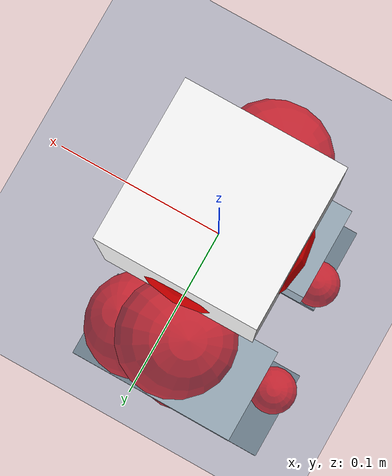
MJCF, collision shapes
<mujoco model="pi_12dof_release_v1">
  <compiler angle="radian" assetdir="assets" balanceinertia="true" inertiafromgeom="false"/>

  <option timestep="0.005" density="1.2" viscosity="2e-05"/>

  <size nkey="1"/>

  <visual>
    <quality shadowsize="8192"/>
    <map shadowclip="0.5"/>
  </visual>

  <default>
    <default class="/">
      <joint armature="0.01" damping="0.01" frictionloss="0.01"/>
      <geom contype="0" conaffinity="0" group="1" solref="-1000 -80"/>
      <site size="0.01 0.005 0.005" group="5"/>
      <general forcelimited="true" biastype="affine" gainprm="20" biasprm="0 -20 -0.5"/>
      <default class="foot">
        <geom size="0.0845 0.036 0.005" type="box" condim="6" group="4" priority="1" friction="0.9 0.2 0.2" solimp="0.015 1 0.005"/>
      </default>
      <default class="reward_collision_sphere">
        <geom group="5" rgba="1 0 0 1"/>
      </default>
    </default>
  </default>

  <asset>
    <texture type="skybox" colorspace="auto" name="//unnamed_texture_0" builtin="gradient" rgb1="0.95 0.95 0.95" rgb2="0.95 0.95 0.95" width="100" height="600"/>
    <texture type="2d" colorspace="auto" name="texplane" builtin="checker" rgb1="0.345 0.575 0.748" rgb2="0.345 0.575 0.748" markrgb="1 1 1" width="512" height="512"/>
    <material name="MatPlane" class="/" texture="texplane" texuniform="true" texrepeat="2 2" specular="0.9"/>
    <mesh name="baselink_1" class="/" file="baselink_1.STL"/>
    <mesh name="r_hip_pitch_link" class="/" file="r_hip_pitch_link.STL"/>
    <mesh name="r_hip_roll_link" class="/" file="r_hip_roll_link.STL"/>
    <mesh name="r_thigh_link" class="/" file="r_thigh_link.STL"/>
    <mesh name="r_calf_link" class="/" file="r_calf_link.STL"/>
    <mesh name="r_ankle_pitch_link" class="/" file="r_ankle_pitch_link.STL"/>
    <mesh name="r_ankle_roll_link" class="/" file="r_ankle_roll_link.STL"/>
    <mesh name="l_hip_pitch_link" class="/" file="l_hip_pitch_link.STL"/>
    <mesh name="l_hip_roll_link" class="/" file="l_hip_roll_link.STL"/>
    <mesh name="l_thigh_link" class="/" file="l_thigh_link.STL"/>
    <mesh name="l_calf_link" class="/" file="l_calf_link.STL"/>
    <mesh name="l_ankle_pitch_link" class="/" file="l_ankle_pitch_link.STL"/>
    <mesh name="l_ankle_roll_link" class="/" file="l_ankle_roll_link.STL"/>
  </asset>

  <worldbody>
    <geom name="floor" class="/" size="100 100 0.125" type="plane" group="0" material="MatPlane"/>
    <light name="toplight_shadow" class="/" pos="0 0 5" dir="0.0990148 0.0990148 -0.990148" type="directional" ambient="0.04 0.04 0.04" diffuse="0.55 0.55 0.55" specular="0.12 0.12 0.12"/>
    <light name="toplight_fill" class="/" pos="0 0 5" dir="0.0990148 0.0990148 -0.990148" type="directional" castshadow="false" ambient="0.04 0.04 0.04" diffuse="0.3 0.3 0.3" specular="0.08 0.08 0.08"/>
    <body name="trunk" pos="-0.000869862 0.000318877 -0.00271189" quat="1 0.000308873 -8.53815e-05 -0.000398881">
      <inertial pos="-0.000584522 -0.00318331 0.0414418" quat="0.696945 0.00800284 0.0108203 0.716998" mass="1.58598" diaginertia="0.00851321 0.00219288 0.00412686"/>
      <joint name="//unnamed_joint_0" type="free"/>
      <geom name="//unnamed_geom_1" class="/" type="mesh" density="0" rgba="1 1 1 1" mesh="baselink_1"/>
      <geom name="//unnamed_geom_2" class="/" size="0.0450081 0.0450081 0.0450081" pos="0 0 0.0791548" type="box" rgba="1 1 1 1"/>
      <geom name="//unnamed_geom_3" class="reward_collision_sphere" size="0.0495089" pos="0 0 0.0692605"/>
      <site name="imu" class="/" pos="-0.0103471 0.00533781 0.0134658" size="0.00900162"/>
      <camera name="track" class="/" pos="0 -1.49723 0" quat="0.707107 0.707107 0 0" mode="trackcom"/>
      <camera name="ego_camera" class="/" pos="0.0721826 0 0.178098" quat="-0.5 -0.5 0.5 0.5"/>
      <body name="r_hip_pitch_link" pos="-0.00119307 -0.0167608 -0.0323684" quat="0.992067 0.000249767 -0.125713 0.000238105">
        <inertial pos="0.00360153 -0.0443756 0.000380763" quat="-0.0234593 0.707425 -0.039045 0.705319" mass="0.261266" diaginertia="8.68885e-05 2.29059e-05 7.92181e-05"/>
        <joint name="r_hip_pitch_joint" class="/" pos="0 0 0" axis="0.00327043 -0.999961 0.00820443" stiffness="0.00781151" range="-1.74413 1.20028" armature="0.00834663" damping="0.00244503" frictionloss="0.00871411"/>
        <geom name="//unnamed_geom_4" class="/" type="mesh" density="0" rgba="0.75294 0.75294 0.75294 1" mesh="r_hip_pitch_link"/>
        <geom name="//unnamed_geom_5" class="/" size="0.000450081 0.000450081 0.000450081" type="box" rgba="0.75294 0.75294 0.75294 1"/>
        <body name="r_hip_roll_link" pos="-0.00217712 -0.0400028 -0.000961466" quat="1 9.53602e-05 -0.000245082 -0.000177166">
          <inertial pos="0.000518652 -0.000455251 -0.0579091" quat="0.706102 -0.0791369 -0.0826721 0.6988" mass="0.290033" diaginertia="0.000265247 6.50401e-05 0.000122372"/>
          <joint name="r_hip_roll_joint" class="/" pos="0 0 0" axis="-0.999955 -0.00645405 -0.00692127" range="-0.173293 0.510872" armature="0.00834901" damping="0.0117395" frictionloss="0.0102552"/>
          <geom name="//unnamed_geom_6" class="/" type="mesh" density="0" rgba="0.75294 0.75294 0.75294 1" mesh="r_hip_roll_link"/>
          <geom name="//unnamed_geom_7" class="/" size="0.000450081 0.000450081 0.000450081" type="box" rgba="0.75294 0.75294 0.75294 1"/>
          <geom name="//unnamed_geom_8" class="reward_collision_sphere" size="0.0360065"/>
          <body name="r_thigh_link" pos="0.00280252 -0.00233851 -0.0706238" quat="0.999999 -9.19735e-05 -0.000993395 -0.000800229">
            <inertial pos="0.000811531 0.00102509 -0.0467396" quat="0.737513 0.675332 -0.000148681 0.00119648" mass="0.0800928" diaginertia="0.00010039 2.21379e-05 5.38833e-05"/>
            <joint name="r_thigh_joint" class="/" pos="0 0 0" axis="-0.000935534 -0.0155006 -0.999879" stiffness="0.0058864" range="-0.287217 0.602322" armature="0.00906465" damping="0.0023563" frictionloss="0.00855004"/>
            <geom name="//unnamed_geom_9" class="/" type="mesh" density="0" rgba="0.75294 0.75294 0.75294 1" mesh="r_thigh_link"/>
            <geom name="//unnamed_geom_10" class="/" size="0.000450081 0.000450081 0.000450081" type="box" rgba="0.75294 0.75294 0.75294 1"/>
            <body name="r_calf_link" pos="-0.00257816 -0.00131648 -0.0690966" quat="0.947699 -5.58408e-05 0.319167 5.33684e-05">
              <inertial pos="0.00234801 -0.000621947 -0.0694407" quat="0.99999 -0.00387885 -0.000651995 0.00225503" mass="0.614518" diaginertia="0.00294323 0.000872332 0.000170436"/>
              <joint name="r_calf_joint" class="/" pos="0 0 0" axis="0.00153202 -0.999956 0.00930745" stiffness="0.000887602" range="-1.63381 0.691393" armature="0.00782113" damping="0.0207001" frictionloss="0.00817883"/>
              <geom name="//unnamed_geom_11" class="/" type="mesh" density="0" rgba="0.75294 0.75294 0.75294 1" mesh="r_calf_link"/>
              <geom name="//unnamed_geom_12" class="/" size="0.000450081 0.000450081 0.000450081" type="box" rgba="0.75294 0.75294 0.75294 1"/>
              <geom name="//unnamed_geom_13" class="reward_collision_sphere" size="0.0360065"/>
              <body name="r_ankle_pitch_link" pos="-0.000607509 0.00210933 -0.140462" quat="0.980091 -0.00017137 -0.198547 9.84034e-05">
                <inertial pos="0.00453359 0.00164177 0.000677005" quat="0.0143621 0.710511 -0.00624789 0.703511" mass="0.120035" diaginertia="0.00024235 5.19097e-05 0.000111884"/>
                <joint name="r_ankle_pitch_joint" class="/" pos="0 0 0" axis="-0.000458499 -0.999999 0.00129988" range="-1.29046 0.48415" armature="0.00935779" damping="0" frictionloss="0.00906584"/>
                <geom name="//unnamed_geom_14" class="/" type="mesh" density="0" rgba="0.75294 0.75294 0.75294 1" mesh="r_ankle_pitch_link"/>
                <geom name="//unnamed_geom_15" class="/" size="0.0351063 0.0360065 0.022504" type="box" rgba="0.75294 0.75294 0.75294 1"/>
                <body name="r_ankle_roll_link" pos="0.0766612 0.000389403 0.00110442" quat="1 0.000241207 -9.32711e-05 -0.00016694">
                  <inertial pos="-0.0233126 -0.000151871 -0.0118099" quat="0.565133 0.428982 0.439804 0.55061" mass="0.38451" diaginertia="0.000911998 0.000234717 0.000268243"/>
                  <joint name="r_ankle_roll_joint" class="/" pos="0 0 0" axis="-0.999995 -0.00313208 -0.000937511" range="-0.204986 0.175316" armature="0.0093079" damping="0" frictionloss="0.0102389"/>
                  <geom name="//unnamed_geom_16" class="/" type="mesh" density="0" rgba="0.75294 0.75294 0.75294 1" mesh="r_ankle_roll_link"/>
                  <geom name="//unnamed_geom_17" class="/" type="mesh" rgba="0.75294 0.75294 0.75294 1" mesh="r_ankle_roll_link"/>
                  <geom name="right_foot" class="foot" size="0.0745424 0.0335643 0.00446978" pos="-0.0490842 0 -0.0435352"/>
                  <geom name="//unnamed_geom_19" class="reward_collision_sphere" size="0.0360065" pos="-0.0481218 0 -0.0197887"/>
                  <geom name="//unnamed_geom_20" class="reward_collision_sphere" size="0.0180032" pos="0.0144365 0.0149723 -0.0395774"/>
                  <geom name="//unnamed_geom_21" class="reward_collision_sphere" size="0.0180032" pos="-0.115492 0.0149723 -0.0395774"/>
                  <site name="right_foot" class="foot" pos="-0.0490842 0 -0.0435352" size="0.00900162"/>
                </body>
              </body>
            </body>
          </body>
        </body>
      </body>
      <body name="l_hip_pitch_link" pos="-0.00242752 0.0187491 -0.0330512" quat="0.9922 -4.29437e-05 -0.124655 -3.72355e-05">
        <inertial pos="0.00264895 0.0428038 -0.000162091" quat="-0.0369764 0.71375 0.0329065 0.698649" mass="0.284002" diaginertia="0.000101506 2.45274e-05 8.90987e-05"/>
        <joint name="l_hip_pitch_joint" class="/" pos="0 0 0" axis="-0.00506856 0.99991 -0.0124115" range="-1.30089 1.73309" armature="0.0100679" damping="0.004137" frictionloss="0.00940902"/>
        <geom name="//unnamed_geom_22" class="/" type="mesh" density="0" rgba="0.75294 0.75294 0.75294 1" mesh="l_hip_pitch_link"/>
        <geom name="//unnamed_geom_23" class="/" size="0.000450081 0.000450081 0.000450081" type="box" rgba="0.75294 0.75294 0.75294 1"/>
        <body name="l_hip_roll_link" pos="-0.00248167 0.0404528 -0.000173528" quat="1 -9.88589e-05 -0.000208188 -2.78979e-05">
          <inertial pos="-0.00148518 0.00269426 -0.0595073" quat="0.697082 -0.0773754 -0.0769245 0.708641" mass="0.282707" diaginertia="0.000274681 6.32088e-05 0.000121992"/>
          <joint name="l_hip_roll_joint" class="/" pos="0 0 0" axis="-0.999929 0.0114647 -0.00334745" range="-0.457716 0.166542" armature="0.00858446" damping="0" frictionloss="0.00779101"/>
          <geom name="//unnamed_geom_24" class="/" type="mesh" density="0" rgba="0.75294 0.75294 0.75294 1" mesh="l_hip_roll_link"/>
          <geom name="//unnamed_geom_25" class="/" size="0.000450081 0.000450081 0.000450081" type="box" rgba="0.75294 0.75294 0.75294 1"/>
          <geom name="//unnamed_geom_26" class="reward_collision_sphere" size="0.0360065"/>
          <body name="l_thigh_link" pos="-0.00268164 0.00086915 -0.069569" quat="1 -0.000133953 0.000409934 0.000192074">
            <inertial pos="0.000415835 -0.00144683 -0.0464452" quat="0.677543 0.73544 0.00633612 0.00488046" mass="0.0826917" diaginertia="0.000102888 2.20536e-05 5.37476e-05"/>
            <joint name="l_thigh_joint" class="/" pos="0 0 0" axis="-0.00417815 0.00102757 -0.999991" stiffness="0.0028478" range="-0.650352 0.34605" armature="0.00985113" damping="0" frictionloss="0.0101376"/>
            <geom name="//unnamed_geom_27" class="/" type="mesh" density="0" rgba="0.75294 0.75294 0.75294 1" mesh="l_thigh_link"/>
            <geom name="//unnamed_geom_28" class="/" size="0.000450081 0.000450081 0.000450081" type="box" rgba="0.75294 0.75294 0.75294 1"/>
            <body name="l_calf_link" pos="0.000597064 -0.00213081 -0.0710918" quat="0.947921 0.00082742 0.318504 -0.000823352">
              <inertial pos="-0.00217169 0.00168455 -0.0665306" quat="0.999983 0.00294649 0.000241466 0.00495564" mass="0.580462" diaginertia="0.00285225 0.0008016 0.000157024"/>
              <joint name="l_calf_joint" class="/" pos="0 0 0" axis="-0.00392361 0.999989 0.00269602" range="-0.633623 1.61866" armature="0.00782609" damping="0.00661784" frictionloss="0.00780171"/>
              <geom name="//unnamed_geom_29" class="/" type="mesh" density="0" rgba="0.75294 0.75294 0.75294 1" mesh="l_calf_link"/>
              <geom name="//unnamed_geom_30" class="/" size="0.000450081 0.000450081 0.000450081" type="box" rgba="0.75294 0.75294 0.75294 1"/>
              <geom name="//unnamed_geom_31" class="reward_collision_sphere" size="0.0360065"/>
              <body name="l_ankle_pitch_link" pos="-0.000759344 -0.000658139 -0.136315" quat="0.980121 -0.000117763 -0.1984 -0.000124933">
                <inertial pos="0.00753008 -0.000360282 -0.000923513" quat="-0.00227428 0.706769 0.00218201 0.707438" mass="0.121862" diaginertia="0.00023964 5.0989e-05 0.000110125"/>
                <joint name="l_ankle_pitch_joint" class="/" pos="0 0 0" axis="0.00152483 0.999905 0.0136934" range="-0.509342 1.31386" armature="0.00904145" damping="0" frictionloss="0.00973676"/>
                <geom name="//unnamed_geom_32" class="/" type="mesh" density="0" rgba="0.75294 0.75294 0.75294 1" mesh="l_ankle_pitch_link"/>
                <geom name="//unnamed_geom_33" class="/" size="0.0351063 0.0360065 0.022504" type="box" rgba="0.75294 0.75294 0.75294 1"/>
                <body name="l_ankle_roll_link" pos="0.0694628 0.00134422 -0.00022506" quat="1 0.00048888 0.000348548 0.000670486">
                  <inertial pos="-0.0249789 -0.000327207 -0.014375" quat="0.548342 0.434787 0.4374 0.564769" mass="0.369933" diaginertia="0.000900202 0.00024867 0.000266031"/>
                  <joint name="l_ankle_roll_joint" class="/" pos="0 0 0" axis="-0.999991 0.00357218 0.00215665" range="-0.147484 0.154668" armature="0.00883864" damping="0.00501645" frictionloss="0.00796999"/>
                  <geom name="//unnamed_geom_34" class="/" type="mesh" density="0" rgba="0.75294 0.75294 0.75294 1" mesh="l_ankle_roll_link"/>
                  <geom name="//unnamed_geom_35" class="/" type="mesh" rgba="0.75294 0.75294 0.75294 1" mesh="l_ankle_roll_link"/>
                  <geom name="left_foot" class="foot" size="0.0787709 0.0343033 0.00405374" pos="-0.0490842 0 -0.0435352"/>
                  <geom name="//unnamed_geom_37" class="reward_collision_sphere" size="0.0360065" pos="-0.0481218 0 -0.0197887"/>
                  <geom name="//unnamed_geom_38" class="reward_collision_sphere" size="0.0180032" pos="0.0144365 -0.0149723 -0.0395774"/>
                  <geom name="//unnamed_geom_39" class="reward_collision_sphere" size="0.0180032" pos="-0.115492 -0.0149723 -0.0395774"/>
                  <site name="left_foot" class="foot" pos="-0.0490842 0 -0.0435352" size="0.00900162"/>
                </body>
              </body>
            </body>
          </body>
        </body>
      </body>
    </body>
  </worldbody>

  <contact>
    <pair class="/" geom1="floor" geom2="right_foot" name="//unnamed_contact_1"/>
    <pair class="/" geom1="floor" geom2="left_foot" name="//unnamed_contact_0"/>
  </contact>

  <actuator>
    <general name="r_hip_pitch_joint" class="/" joint="r_hip_pitch_joint" forcerange="-19.47 19.47" gainprm="18.4473" biasprm="0 -18.4473 -0.479359"/>
    <general name="r_hip_roll_joint" class="/" joint="r_hip_roll_joint" forcerange="-16.9435 16.9435" gainprm="18.4473" biasprm="0 -18.4473 -0.479359"/>
    <general name="r_thigh_joint" class="/" joint="r_thigh_joint" forcerange="-20.9317 20.9317" gainprm="18.4473" biasprm="0 -18.4473 -0.479359"/>
    <general name="r_calf_joint" class="/" joint="r_calf_joint" forcerange="-18.5904 18.5904" gainprm="18.4473" biasprm="0 -18.4473 -0.479359"/>
    <general name="r_ankle_pitch_joint" class="/" joint="r_ankle_pitch_joint" forcerange="-16.8999 16.8999" gainprm="18.4473" biasprm="0 -18.4473 -0.479359"/>
    <general name="r_ankle_roll_joint" class="/" joint="r_ankle_roll_joint" forcerange="-19.1071 19.1071" gainprm="18.4473" biasprm="0 -18.4473 -0.479359"/>
    <general name="l_hip_pitch_joint" class="/" joint="l_hip_pitch_joint" forcerange="-19.596 19.596" gainprm="18.4473" biasprm="0 -18.4473 -0.479359"/>
    <general name="l_hip_roll_joint" class="/" joint="l_hip_roll_joint" forcerange="-17.335 17.335" gainprm="18.4473" biasprm="0 -18.4473 -0.479359"/>
    <general name="l_thigh_joint" class="/" joint="l_thigh_joint" forcerange="-19.124 19.124" gainprm="18.4473" biasprm="0 -18.4473 -0.479359"/>
    <general name="l_calf_joint" class="/" joint="l_calf_joint" forcerange="-17.143 17.143" gainprm="18.4473" biasprm="0 -18.4473 -0.479359"/>
    <general name="l_ankle_pitch_joint" class="/" joint="l_ankle_pitch_joint" forcerange="-19.9898 19.9898" gainprm="18.4473" biasprm="0 -18.4473 -0.479359"/>
    <general name="l_ankle_roll_joint" class="/" joint="l_ankle_roll_joint" forcerange="-16.9708 16.9708" gainprm="18.4473" biasprm="0 -18.4473 -0.479359"/>
  </actuator>

  <sensor>
    <gyro site="imu" name="imu_angular_velocity"/>
    <velocimeter site="imu" name="imu_linear_velocity"/>
    <framelinvel objtype="site" objname="left_foot" name="left_foot_global_linear_velocity"/>
    <framelinvel objtype="site" objname="right_foot" name="right_foot_global_linear_velocity"/>
  </sensor>

  <keyframe>
    <key name="home" qpos="0 0 0.291 1 0 0 0 0.4 0 0 -0.8 0.4 0 -0.4 0 0 0.8 -0.4 0"/>
  </keyframe>
</mujoco>
